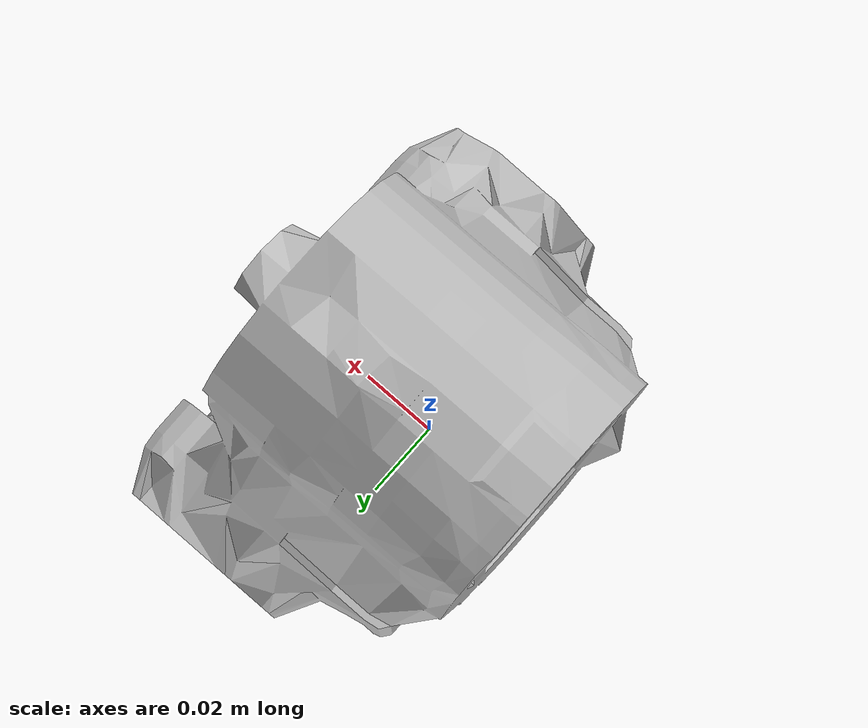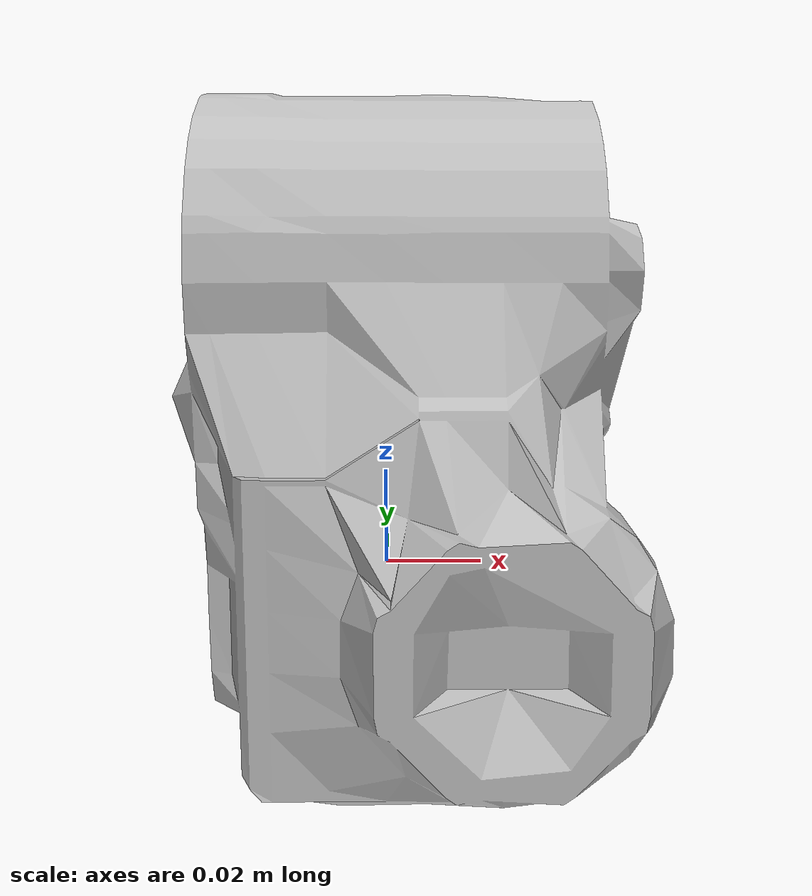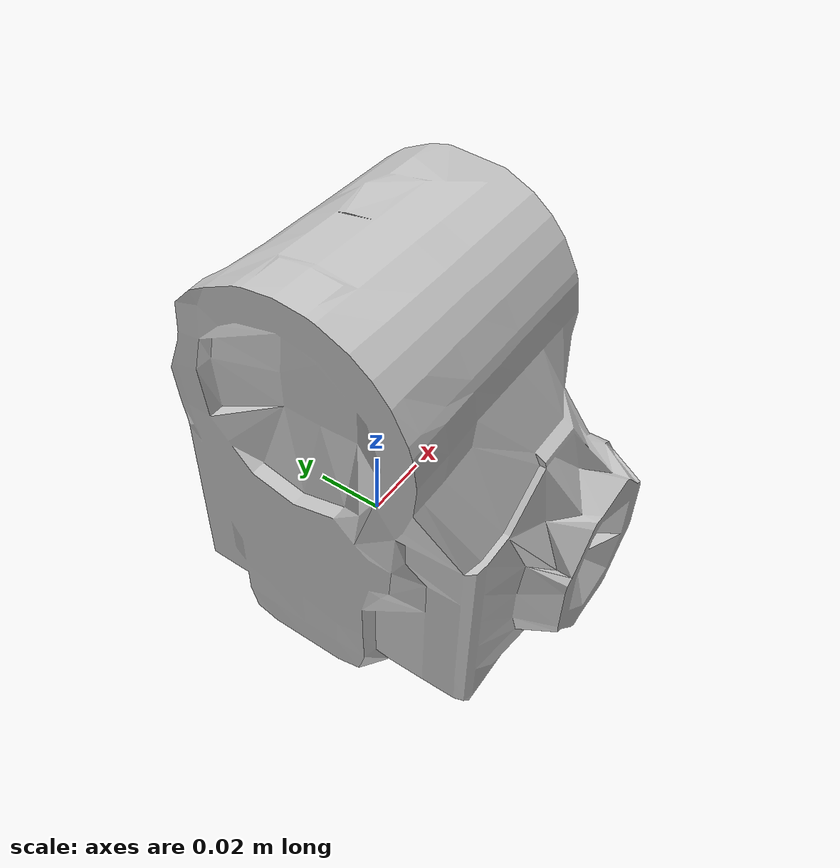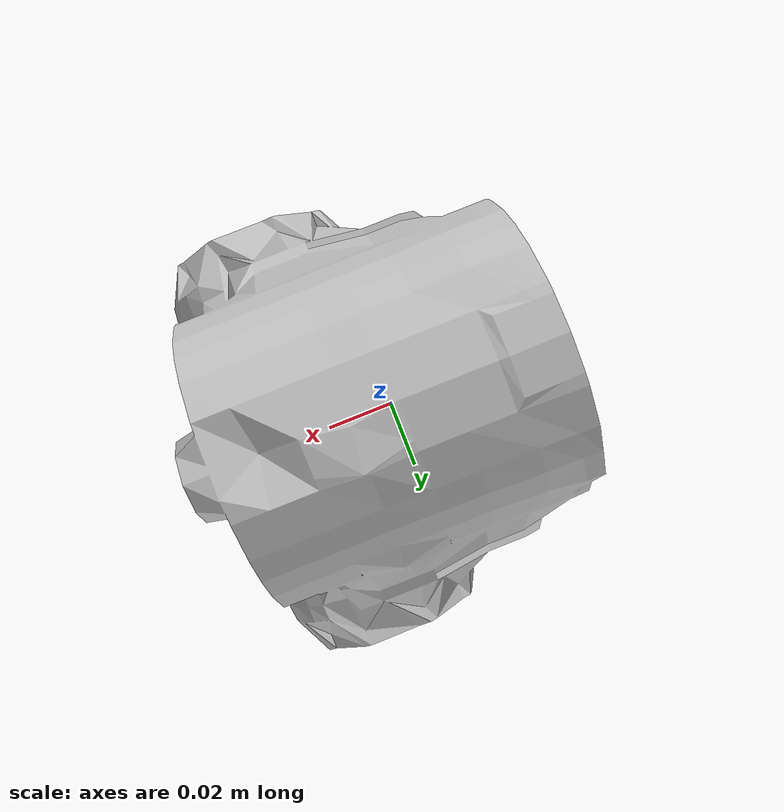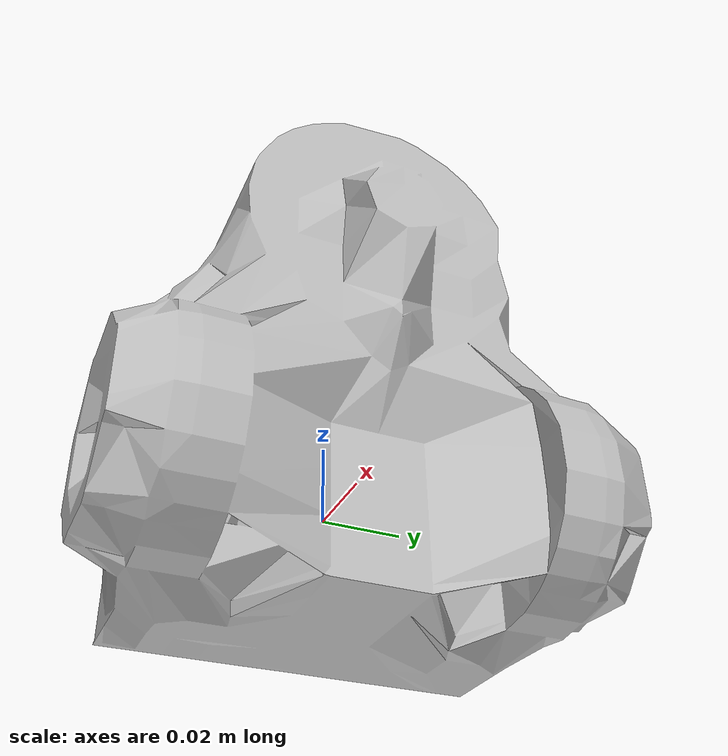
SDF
<sdf version='1.10'>
  <model name='ergoCub'>
    <link name='root_link'>
      <inertial>
        <pose>0.0024748962432214398 -0.0001050794470993344 0.023450368787955641 0 0 0</pose>
        <mass>2.8237514828246408</mass>
        <inertia>
          <ixx>0.0043800336692586869</ixx>
          <ixy>-1.436903968838589e-06</ixy>
          <ixz>1.4098441290530499e-05</ixz>
          <iyy>0.0056306062852994661</iyy>
          <iyz>-2.329934099458888e-05</iyz>
          <izz>0.003616681010808376</izz>
        </inertia>
      </inertial>
      <collision name='root_link_collision'>
        <pose>0 0 0 0 0 0</pose>
        <geometry>
          <mesh>
            <scale>0.001 0.001 0.001</scale>
            <uri>model://ergoCub/meshes/simmechanics/sim_ecub_1-1_root_link.stl</uri>
          </mesh>
        </geometry>
      </collision>
      <visual name='root_link_visual'>
        <pose>0 0 0 0 0 0</pose>
        <geometry>
          <mesh>
            <scale>0.001 0.001 0.001</scale>
            <uri>model://ergoCub/meshes/simmechanics/sim_ecub_1-1_root_link.stl</uri>
          </mesh>
        </geometry>
        <material>
          <diffuse>0.75000006 0.75000006 0.75000006 1</diffuse>
          <ambient>0.75000006 0.75000006 0.75000006 1</ambient>
        </material>
      </visual>
    </link>
  </model>
</sdf>
